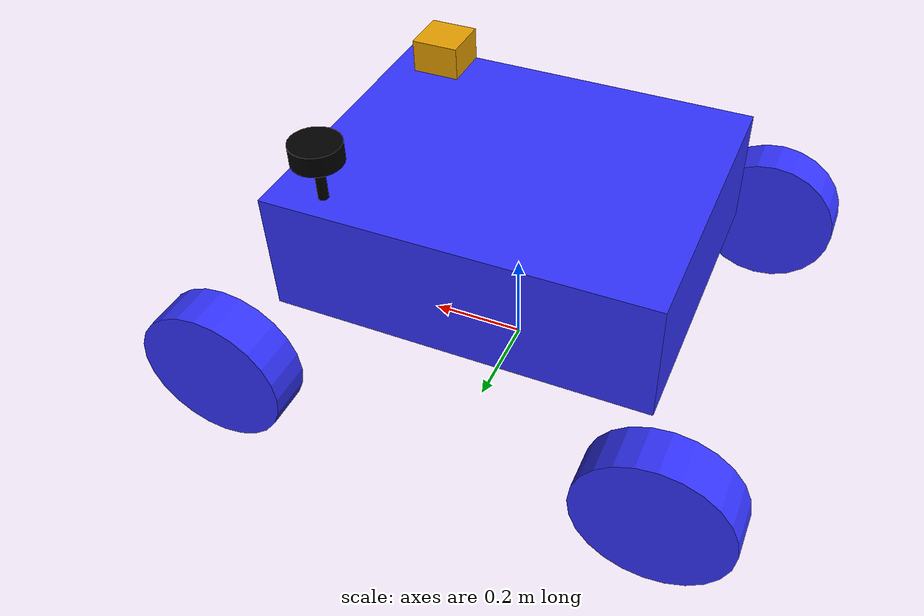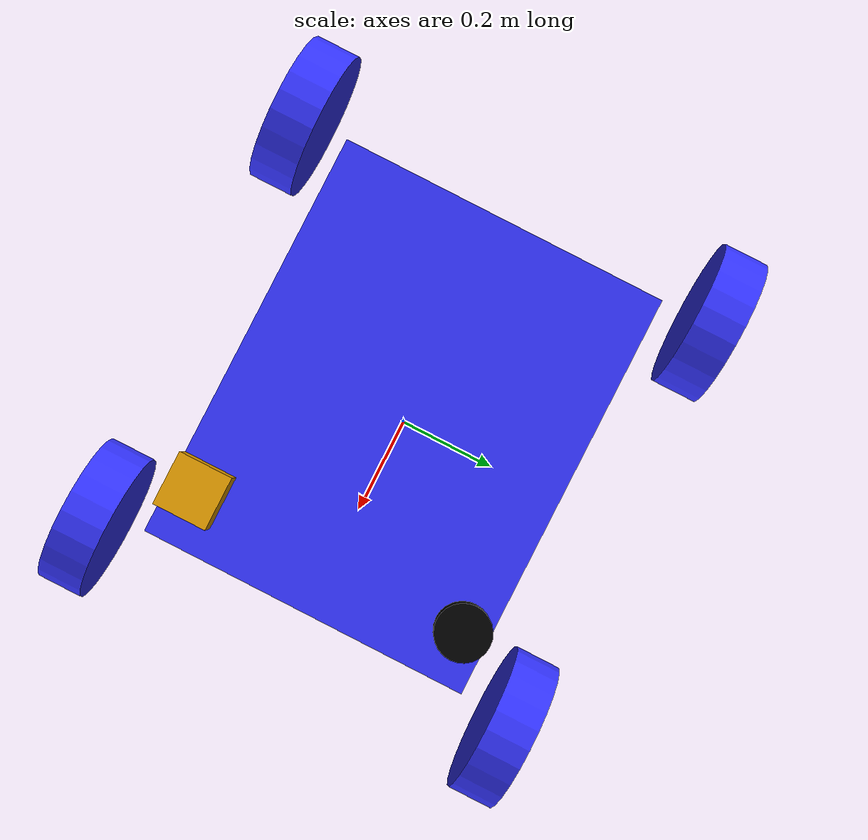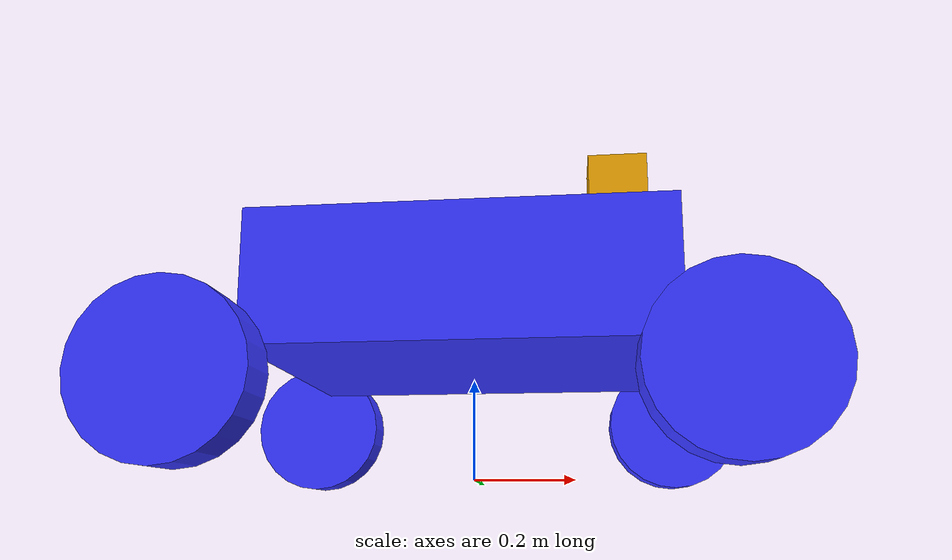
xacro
<?xml version="1.0"?>
<robot xmlns:xacro="http://www.ros.org/wiki/xacro"  name="robot">

    <xacro:arg name="use_ros2_control" default="true"/>
    <xacro:arg name="sim_mode" default="false"/>

    <xacro:include filename="robot_core.xacro" />
    <xacro:include filename="lidar.xacro" />
    <xacro:include filename="imu.xacro" />
    <xacro:if value="$(arg use_ros2_control)">
        <xacro:include filename="ros2_control.xacro" />
    </xacro:if>
    <xacro:unless value="$(arg use_ros2_control)">
        <xacro:include filename="gazebo_control.xacro" />
    </xacro:unless>

</robot>

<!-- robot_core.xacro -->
<robot xmlns:xacro="http://www.ros.org/wiki/xacro" name="robot">

    <xacro:include filename="inertial_macros.xacro" />

    <material name="white">
        <color rgba="1 1 1 1" />
    </material>

    <material name="orange">
        <color rgba="1 0.3 0.1 1" />
    </material>

    <material name="blue">
        <color rgba="0.2 0.2 1 1" />
    </material>

    <material name="black">
        <color rgba="0 0 0 1" />
    </material>

    <material name="red">
        <color rgba="1 0 0 1"/>
    </material>

    <!-- BASE LINK -->

    <link name="base_link">

    </link>

    <!-- BASE_FOOTPRINT LINK -->

    <joint name="base_footprint_joint" type="fixed">
        <parent link="base_link"/>
        <child link="base_footprint"/>
        <origin xyz="0 0 0" rpy="0 0 0"/>
    </joint>

    <link name="base_footprint">
    </link>

    <!-- Chassis Link -->
    <joint name="chassis_joint" type="fixed">
        <parent link="base_link"/>
        <child link="chassis"/>
        <origin xyz="0 0 0.34571"/>
    </joint>

    <link name="chassis">
        <visual>
            <origin xyz ="0 0 0"/>
            <geometry>
                <box size="0.77 0.62 0.25" />
            </geometry>
            <material name="blue"/>
        </visual>
        <collision>
            <origin xyz ="0 0 0"/>
            <geometry>
                <box size="0.77 0.62 0.25" />
            </geometry>
        </collision>
        <xacro:inertial_box mass="20" x="0.77" y="0.62" z="0.25">
            <origin xyz="0 0 0" rpy="0 0 0"/>
        </xacro:inertial_box>
    </link>

    <gazebo reference="chassis">
        <material>Gazebo/Blue</material>
    </gazebo>

    <!-- Front Left Wheel Link -->
    <joint name="front_left_wheel_joint" type="continuous">
        <parent link="base_link" />
        <child link="front_left_wheel" />
        <origin xyz ="0.44071 -0.44259 0.15" rpy="-${pi/2} 0 0" />
        <axis xyz="0 0 1" />
    </joint>

    <link name="front_left_wheel">
        <visual>
            <geometry>
                <cylinder radius="0.15" length="0.09" />
            </geometry>
            <material name="blue"/>
        </visual>
        <collision>
            <geometry>
                <cylinder radius="0.15" length="0.09" />
            </geometry>
        </collision>
        <xacro:inertial_cylinder mass="1.2" length="0.09" radius="0.15">
            <origin xyz="0 0 0" rpy="0 0 0"/>
        </xacro:inertial_cylinder>
    </link>

    <gazebo reference="front_left_wheel">
        <material>Gazebo/Blue</material>
    </gazebo>

    <!-- Front Right Wheel Link -->
    <joint name="front_right_wheel_joint" type="continuous">
        <parent link="base_link" />
        <child link="front_right_wheel" />
        <origin xyz ="0.44071 0.44259 0.15" rpy="${pi/2} 0 0" />
        <axis xyz="0 0 -1" />
    </joint>

    <link name="front_right_wheel">
        <visual>

            <geometry>
                <cylinder radius="0.15" length="0.09" />
            </geometry>
            <material name="blue"/>
        </visual>
        <collision>
            <geometry>
                <cylinder radius="0.15" length="0.09" />
            </geometry>
        </collision>
        <xacro:inertial_cylinder mass="1.2" length="0.09" radius="0.15">
            <origin xyz="0 0 0" rpy="0 0 0"/>
        </xacro:inertial_cylinder>
    </link>

    <gazebo reference="front_right_wheel">
        <material>Gazebo/Blue</material>
    </gazebo>

    <!-- Back Left Wheel Link -->
    <joint name="back_left_wheel_joint" type="continuous">
        <parent link="base_link" />
        <child link="back_left_wheel" />
        <origin xyz ="-0.44071 -0.44259 0.15" rpy="-${pi/2} 0 0" />
        <axis xyz="0 0 1" />
    </joint>

    <link name="back_left_wheel">
        <visual>
            <geometry>
                <cylinder radius="0.15" length="0.09" />
            </geometry>
            <material name="blue"/>
        </visual>
        <collision>
            <geometry>
                <cylinder radius="0.15" length="0.09" />
            </geometry>
        </collision>
        <xacro:inertial_cylinder mass="1.2" length="0.09" radius="0.15">
            <origin xyz="0 0 0" rpy="0 0 0"/>
        </xacro:inertial_cylinder>
    </link>

    <gazebo reference="back_left_wheel">
        <material>Gazebo/Blue</material>
    </gazebo>

    <!-- Back Right Wheel Link -->
    <joint name="back_right_wheel_joint" type="continuous">
        <parent link="base_link" />
        <child link="back_right_wheel" />
        <origin xyz ="-0.44071 0.44259 0.15" rpy="${pi/2} 0 0" />
        <axis xyz="0 0 -1" />
    </joint>

    <link name="back_right_wheel">
        <visual>
            <geometry>
                <cylinder radius="0.15" length="0.09" />
            </geometry>
            <material name="blue"/>
        </visual>
        <collision>
            <geometry>
                <cylinder radius="0.15" length="0.09" />
            </geometry>
        </collision>
        <xacro:inertial_cylinder mass="1.2" length="0.09" radius="0.15">
            <origin xyz="0 0 0" rpy="0 0 0"/>
        </xacro:inertial_cylinder>
    </link>

    <gazebo reference="back_right_wheel">
        <material>Gazebo/Blue</material>
    </gazebo>

</robot>

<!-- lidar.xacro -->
<robot xmlns:xacro="http://www.ros.org/wiki/xacro" >

    <joint name="laser_joint" type="fixed">
        <parent link="base_link"/>
        <child link="laser_frame"/>
        <origin xyz="0.28 0.255 0.57071" rpy="0 0 0"/>
    </joint>

    <link name="laser_frame">
        <visual>
            <geometry>
                <cylinder radius="0.05" length="0.04"/>
            </geometry>
            <material name="black"/>
        </visual>
        <visual>
            <origin xyz="0 0 -0.05"/>
            <geometry>
                <cylinder radius="0.01" length="0.1"/>
            </geometry>
            <material name="black"/>
        </visual>
        <collision>
            <geometry>
                <cylinder radius="0.05" length="0.04"/>
            </geometry>
        </collision>
        <xacro:inertial_cylinder mass="0.1" length="0.04" radius="0.05">
            <origin xyz="0 0 0" rpy="0 0 0"/>
        </xacro:inertial_cylinder>
    </link>

    <gazebo reference="laser_frame">
        <material>Gazebo/Black</material>

        <sensor name="laser" type="ray">
            <pose> 0 0 0 0 0 0 </pose>
            <visualize>true</visualize>
            <update_rate>10</update_rate>
            <ray>
                <scan>
                    <horizontal>
                        <samples>360</samples>
                        <min_angle>-2.35</min_angle>
                        <max_angle>2.35</max_angle>
                    </horizontal>
                </scan>
                <range>
                    <min>0.3</min>
                    <max>20</max>
                </range>
            </ray>
            <plugin name="laser_controller" filename="libgazebo_ros_ray_sensor.so">
                <ros>
                    <argument>~/out:=scan</argument>
                </ros>
                <output_type>sensor_msgs/LaserScan</output_type>
                <frame_name>laser_frame</frame_name>
            </plugin>
        </sensor>
    </gazebo>

</robot>

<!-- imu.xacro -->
<robot xmlns:xacro="http://www.ros.org/wiki/xacro">
    <link name="imu_link">
    <visual>
      <geometry>
        <box size="0.1 0.1 0.1"/>
      </geometry>
    </visual>

    <collision>
      <geometry>
        <box size="0.1 0.1 0.1"/>
      </geometry>
    </collision>
  </link>

  <joint name="imu_joint" type="fixed">
    <parent link="base_link"/>
    <child link="imu_link"/>
    <origin xyz="0.28 -0.260 0.49071"/>
  </joint>

  <gazebo reference="imu_link">
    <sensor name="imu_sensor" type="imu">
      <plugin filename="libgazebo_ros_imu_sensor.so" name="imu_plugin">
        <ros>
          <namespace>/demo</namespace>
          <remapping>~/out:=imu</remapping>
        </ros>
        <initial_orientation_as_reference>false</initial_orientation_as_reference>
      </plugin>
      <always_on>true</always_on>
      <update_rate>100</update_rate>
      <visualize>true</visualize>
      <imu>
        <angular_velocity>
          <x>
            <noise type="gaussian">
              <mean>0.0</mean>
              <stddev>2e-4</stddev>
              <bias_mean>0.0000075</bias_mean>
              <bias_stddev>0.0000008</bias_stddev>
            </noise>
          </x>
          <y>
            <noise type="gaussian">
              <mean>0.0</mean>
              <stddev>2e-4</stddev>
              <bias_mean>0.0000075</bias_mean>
              <bias_stddev>0.0000008</bias_stddev>
            </noise>
          </y>
          <z>
            <noise type="gaussian">
              <mean>0.0</mean>
              <stddev>2e-4</stddev>
              <bias_mean>0.0000075</bias_mean>
              <bias_stddev>0.0000008</bias_stddev>
            </noise>
          </z>
        </angular_velocity>
        <linear_acceleration>
          <x>
            <noise type="gaussian">
              <mean>0.0</mean>
              <stddev>1.7e-2</stddev>
              <bias_mean>0.1</bias_mean>
              <bias_stddev>0.001</bias_stddev>
            </noise>
          </x>
          <y>
            <noise type="gaussian">
              <mean>0.0</mean>
              <stddev>1.7e-2</stddev>
              <bias_mean>0.1</bias_mean>
              <bias_stddev>0.001</bias_stddev>
            </noise>
          </y>
          <z>
            <noise type="gaussian">
              <mean>0.0</mean>
              <stddev>1.7e-2</stddev>
              <bias_mean>0.1</bias_mean>
              <bias_stddev>0.001</bias_stddev>
            </noise>
          </z>
        </linear_acceleration>
      </imu>
    </sensor>
  </gazebo>

</robot>
